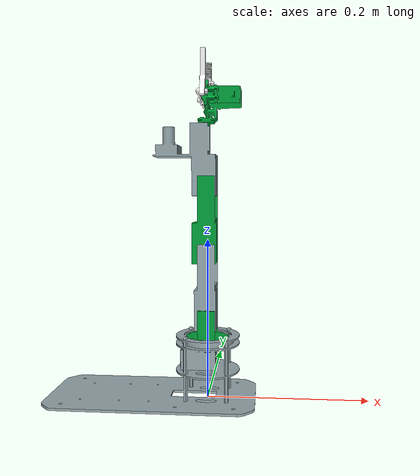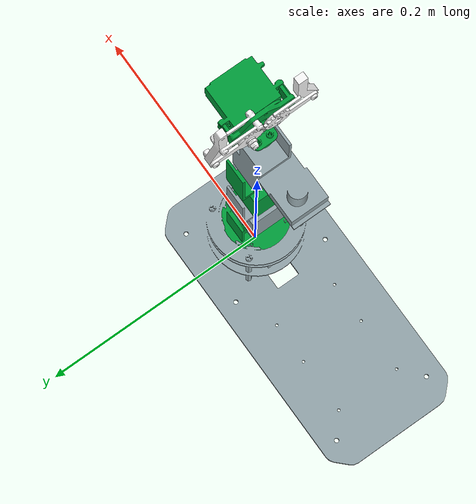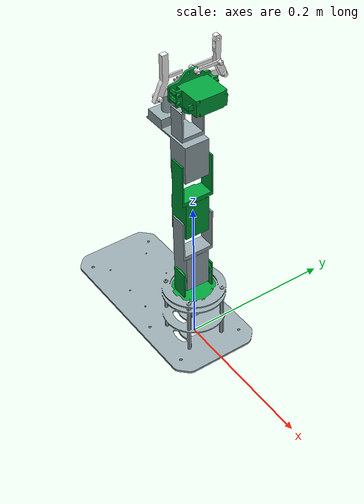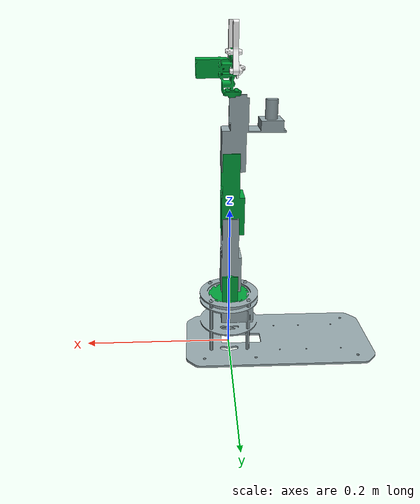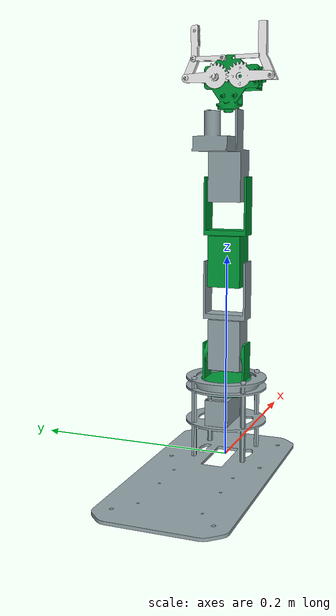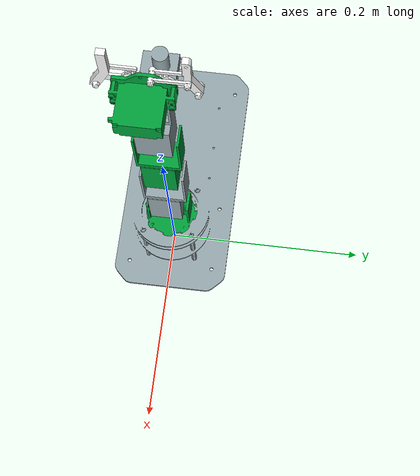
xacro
<?xml version="1.0"?>
<robot xmlns:xacro="http://www.ros.org/wiki/xacro" name="dofbot">
    <xacro:arg name="initial_positions_file" default="initial_positions.yaml" />

    <!-- Import dofbot urdf file -->
    <xacro:include filename="$(find robotx_description)/urdf/robotx_position_compiled.urdf" />

    <!-- Import control_xacro -->
    <xacro:include filename="dofbot.ros2_control.xacro" />

    <xacro:dofbot_ros2_control name="FakeSystem" initial_positions_file="$(arg initial_positions_file)"/>

</robot>

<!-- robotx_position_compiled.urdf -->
<!-- |    This document was autogenerated by xacro from /home/robousr/Dev/mujoco_ws/install/robotx_description/share/robotx_description/urdf/robotx_position.urdf | -->
<!-- |    EDITING THIS FILE BY HAND IS NOT RECOMMENDED                                 | -->
<robot name="dofbot">
  <!-- ================= MATERIALS ================= -->
  <material name="black">
    <color rgba="0 0 0 1"/>
  </material>
  <material name="green">
    <color rgba="0 1 0 1"/>
  </material>
  <material name="white">
    <color rgba="1 1 1 1"/>
  </material>
  <material name="gray">
    <color rgba="0.59 0.66 0.68 1"/>
  </material>
  <material name="light_green">
    <color rgba="0 0.63 0.23 1"/>
  </material>
  <!-- ================= INERTIAS ================= -->
  <link name="base_link">
    <visual>
      <origin rpy="0 0 0" xyz="0 0 0"/>
      <geometry>
        <mesh filename="package://robotx_description/meshes/base_link.STL"/>
      </geometry>
      <material name="gray">
        </material>
    </visual>
    <collision>
      <origin rpy="0 0 0" xyz="0 0 0"/>
      <geometry>
        <mesh filename="package://robotx_description/meshes/base_link_collider.STL"/>
      </geometry>
    </collision>
    <inertial>
      <origin rpy="0 0 0" xyz="-0.048241 -0.000057 0.021293"/>
      <mass value="0.369954"/>
      <inertia ixx="0.000627914" ixy="5.42014e-07" ixz="-0.000320848" iyy="0.00206292" iyz="5.68107e-07" izz="0.00210302"/>
    </inertial>
  </link>
  <link name="link1">
    <visual>
      <origin rpy="0 0 0" xyz="0 0 0"/>
      <geometry>
        <mesh filename="package://robotx_description/meshes/link1.STL"/>
      </geometry>
      <material name="light_green">
        </material>
    </visual>
    <collision>
      <origin rpy="0 0 0" xyz="0 0 0"/>
      <geometry>
        <mesh filename="package://robotx_description/meshes/link1_collider.STL"/>
      </geometry>
    </collision>
    <inertial>
      <origin rpy="0 0 0" xyz="0.000000 -0.000058 0.017982"/>
      <mass value="0.052133"/>
      <inertia ixx="2.0489e-05" ixy="-4.09574e-11" ixz="-1.96858e-10" iyy="1.68449e-05" iyz="7.50244e-08" izz="1.87563e-05"/>
    </inertial>
  </link>
  <link name="link2">
    <visual>
      <origin rpy="0 0 0" xyz="0 0 0"/>
      <geometry>
        <mesh filename="package://robotx_description/meshes/link2.STL"/>
      </geometry>
      <material name="gray">
        </material>
    </visual>
    <collision>
      <origin rpy="0 0 0" xyz="0 0 0"/>
      <geometry>
        <mesh filename="package://robotx_description/meshes/link2_collider.STL"/>
      </geometry>
    </collision>
    <inertial>
      <origin rpy="0 0 0" xyz="0.024890 -0.002259 0.000081"/>
      <mass value="0.0852143"/>
      <inertia ixx="1.57532e-05" ixy="-2.3667e-06" ixz="4.10319e-07" iyy="7.18242e-05" iyz="2.04186e-08" izz="6.65029e-05"/>
    </inertial>
  </link>
  <link name="link3">
    <visual>
      <origin rpy="0 0 0" xyz="0 0 0"/>
      <geometry>
        <mesh filename="package://robotx_description/meshes/link3.STL"/>
      </geometry>
      <material name="light_green">
        </material>
    </visual>
    <collision>
      <origin rpy="0 0 0" xyz="0 0 0"/>
      <geometry>
        <mesh filename="package://robotx_description/meshes/link3_collider.STL"/>
      </geometry>
    </collision>
    <inertial>
      <origin rpy="0 0 0" xyz="0.024890 -0.002259 0.000651"/>
      <mass value="0.0852113"/>
      <inertia ixx="1.57528e-05" ixy="-2.3675e-06" ixz="3.82539e-07" iyy="7.18221e-05" iyz="2.48634e-08" izz="6.65014e-05"/>
    </inertial>
  </link>
  <link name="link4">
    <visual>
      <origin rpy="0 0 0" xyz="0 0 0"/>
      <geometry>
        <mesh filename="package://robotx_description/meshes/link4.STL"/>
      </geometry>
      <material name="gray">
        </material>
    </visual>
    <collision>
      <origin rpy="0 0 0" xyz="0 0 0"/>
      <geometry>
        <mesh filename="package://robotx_description/meshes/link4_collider.STL"/>
      </geometry>
    </collision>
    <inertial>
      <origin rpy="0 0 0" xyz="0.038494 -0.004349 0.000785"/>
      <mass value="0.160513"/>
      <inertia ixx="7.57127e-05" ixy="-5.61912e-06" ixz="-4.6911e-08" iyy="0.000107106" iyz="-6.26283e-07" izz="0.000162611"/>
    </inertial>
  </link>
  <link name="link5">
    <visual>
      <origin rpy="0 0 0" xyz="0 0 0"/>
      <geometry>
        <mesh filename="package://robotx_description/meshes/link5.STL"/>
      </geometry>
      <material name="light_green">
        </material>
    </visual>
    <collision>
      <origin rpy="0 0 0" xyz="0 0 0"/>
      <geometry>
        <mesh filename="package://robotx_description/meshes/link5_collider.STL"/>
      </geometry>
    </collision>
    <inertial>
      <origin rpy="0 0 0" xyz="0.002194 0.017899 0.029433"/>
      <mass value="0.11192"/>
      <inertia ixx="3.11801e-05" ixy="-5.57049e-07" ixz="-6.73702e-07" iyy="2.79208e-05" iyz="-4.97005e-06" izz="3.62525e-05"/>
    </inertial>
  </link>
  <link name="link5a1">
    <visual>
      <origin rpy="0 0 0" xyz="0 0 0"/>
      <geometry>
        <mesh filename="package://robotx_description/meshes/link5a1.STL"/>
      </geometry>
      <material name="white">
        </material>
    </visual>
    <collision>
      <origin rpy="0 0 0" xyz="0 0 0"/>
      <geometry>
        <mesh filename="package://robotx_description/meshes/link5a1_collider.STL"/>
      </geometry>
    </collision>
    <inertial>
      <origin rpy="0 0 0" xyz="0.006493 0.000318 0.004269"/>
      <mass value="0.00542231"/>
      <inertia ixx="1.55742e-07" ixy="1.46659e-08" ixz="3.18943e-08" iyy="8.58889e-07" iyz="-2.09857e-09" izz="9.59872e-07"/>
    </inertial>
  </link>
  <link name="link5b1">
    <visual>
      <origin rpy="0 0 0" xyz="0 0 0"/>
      <geometry>
        <mesh filename="package://robotx_description/meshes/link5b1.STL"/>
      </geometry>
      <material name="white">
        </material>
    </visual>
    <collision>
      <origin rpy="0 0 0" xyz="0 0 0"/>
      <geometry>
        <mesh filename="package://robotx_description/meshes/link5b1_collider.STL"/>
      </geometry>
    </collision>
    <inertial>
      <origin rpy="0 0 0" xyz="-0.007172 0.000257 0.000650"/>
      <mass value="0.00487536"/>
      <inertia ixx="1.30783e-07" ixy="-1.93309e-08" ixz="-6.3004e-08" iyy="8.1377e-07" iyz="-9.54694e-10" izz="8.58767e-07"/>
    </inertial>
  </link>
  <link name="link5a2">
    <visual>
      <origin rpy="0 0 0" xyz="0 0 0"/>
      <geometry>
        <mesh filename="package://robotx_description/meshes/link5a2.STL"/>
      </geometry>
      <material name="white">
        </material>
    </visual>
    <collision>
      <origin rpy="0 0 0" xyz="0 0 0"/>
      <geometry>
        <mesh filename="package://robotx_description/meshes/link5a2_collider.STL"/>
      </geometry>
    </collision>
    <inertial>
      <origin rpy="0 0 0" xyz="-0.006191 0.022587 -0.003138"/>
      <mass value="0.00624262"/>
      <inertia ixx="1.52974e-06" ixy="2.46533e-07" ixz="4.03941e-10" iyy="9.90392e-08" iyz="-1.95022e-08" izz="1.59847e-06"/>
    </inertial>
  </link>
  <link name="link5b2">
    <visual>
      <origin rpy="0 0 0" xyz="0 0 0"/>
      <geometry>
        <mesh filename="package://robotx_description/meshes/link5b2.STL"/>
      </geometry>
      <material name="white">
        </material>
    </visual>
    <collision>
      <origin rpy="0 0 0" xyz="0 0 0"/>
      <geometry>
        <mesh filename="package://robotx_description/meshes/link5b2_collider.STL"/>
      </geometry>
    </collision>
    <inertial>
      <origin rpy="0 0 0" xyz="0.006021 0.022633 -0.003000"/>
      <mass value="0.00624262"/>
      <inertia ixx="1.53693e-06" ixy="-2.35784e-07" ixz="7.87104e-14" iyy="9.89977e-08" iyz="5.22151e-13" izz="1.59847e-06"/>
    </inertial>
  </link>
  <link name="link5a3">
    <visual>
      <origin rpy="0 0 0" xyz="0 0 0"/>
      <geometry>
        <mesh filename="package://robotx_description/meshes/link5a3.STL"/>
      </geometry>
      <material name="white">
        </material>
    </visual>
    <collision>
      <origin rpy="0 0 0" xyz="0 0 0"/>
      <geometry>
        <mesh filename="package://robotx_description/meshes/link5a3_collider.STL"/>
      </geometry>
    </collision>
    <inertial>
      <origin rpy="0 0 0" xyz="0.014410 0.000216 -0.000686"/>
      <mass value="0.00258849"/>
      <inertia ixx="5.83703e-08" ixy="-5.9177e-09" ixz="3.32641e-09" iyy="4.53009e-07" iyz="5.00492e-11" izz="4.0352e-07"/>
    </inertial>
  </link>
  <link name="link5b3">
    <visual>
      <origin rpy="0 0 0" xyz="0 0 0"/>
      <geometry>
        <mesh filename="package://robotx_description/meshes/link5b3.STL"/>
      </geometry>
      <material name="white">
        </material>
    </visual>
    <collision>
      <origin rpy="0 0 0" xyz="0 0 0"/>
      <geometry>
        <mesh filename="package://robotx_description/meshes/link5b3_collider.STL"/>
      </geometry>
    </collision>
    <inertial>
      <origin rpy="0 0 0" xyz="-0.014411 0.000175 -0.000686"/>
      <mass value="0.00258849"/>
      <inertia ixx="5.83396e-08" ixy="4.78574e-09" ixz="-3.32675e-09" iyy="4.5304e-07" iyz="4.01951e-11" izz="4.0352e-07"/>
    </inertial>
  </link>
  <link name="linkcam">
    </link>
  <joint name="joint1" type="revolute">
    <origin rpy="0 0 0" xyz="0 0 0.0607"/>
    <parent link="base_link"/>
    <child link="link1"/>
    <axis xyz="0 0 1"/>
    <limit effort="100" lower="-1.5707963267948966" upper="1.5707963267948966" velocity="100.0"/>
  </joint>
  <joint name="joint2" type="revolute">
    <origin rpy="-1.5707963267948966 -1.5707963267948966 0" xyz="0 -0.00031873 0.04145"/>
    <parent link="link1"/>
    <child link="link2"/>
    <axis xyz="0 0 1"/>
    <limit effort="100" lower="-1.5707963267948966" upper="1.5707963267948966" velocity="100.0"/>
  </joint>
  <joint name="joint3" type="revolute">
    <origin rpy="0 0 0" xyz="0.08285 0 0"/>
    <parent link="link2"/>
    <child link="link3"/>
    <axis xyz="0 0 1"/>
    <limit effort="100" lower="-1.5707963267948966" upper="1.5707963267948966" velocity="100.0"/>
  </joint>
  <joint name="joint4" type="revolute">
    <origin rpy="0 0 0" xyz="0.08285 0 0"/>
    <parent link="link3"/>
    <child link="link4"/>
    <axis xyz="0 0 1"/>
    <limit effort="100" lower="-1.5707963267948966" upper="1.5707963267948966" velocity="100.0"/>
  </joint>
  <joint name="joint5" type="revolute">
    <origin rpy="0 1.5707963267948966 0" xyz="0.07385 -0.001 0"/>
    <parent link="link4"/>
    <child link="link5"/>
    <axis xyz="0 0 1"/>
    <limit effort="100" lower="-1.5707963267948966" upper="1.5707963267948966" velocity="100.0"/>
  </joint>
  <joint name="joint5a1" type="revolute">
    <origin rpy="1.5707963267948966 0 0" xyz="0.0124 0.001 0.0322"/>
    <parent link="link5"/>
    <child link="link5a1"/>
    <axis xyz="0 0 1"/>
    <limit effort="100" lower="-1.5707963267948966" upper="1.5707963267948966" velocity="100.0"/>
  </joint>
  <joint name="joint5a2" type="revolute">
    <origin rpy="0 0 0" xyz="0.03 0 0.0045"/>
    <parent link="link5a1"/>
    <child link="link5a2"/>
    <axis xyz="0 0 1"/>
    <limit effort="100" lower="-1.5707963267948966" upper="1.5707963267948966" velocity="100.0"/>
  </joint>
  <joint name="joint5a3" type="revolute">
    <origin rpy="1.5707963267948966 0 0" xyz="0.0045 -0.0005 0.0502"/>
    <parent link="link5"/>
    <child link="link5a3"/>
    <axis xyz="0 0 1"/>
    <limit effort="100" lower="-1.5707963267948966" upper="1.5707963267948966" velocity="100.0"/>
  </joint>
  <joint name="joint5b1" type="revolute">
    <origin rpy="1.5707963267948966 0 0" xyz="-0.01215 -0.0035 0.0322"/>
    <parent link="link5"/>
    <child link="link5b1"/>
    <axis xyz="0 0 1"/>
    <limit effort="100" lower="-1.5707963267948966" upper="1.5707963267948966" velocity="100.0"/>
  </joint>
  <joint name="joint5b2" type="revolute">
    <origin rpy="0 0 0" xyz="-0.03 -0.0002 0"/>
    <parent link="link5b1"/>
    <child link="link5b2"/>
    <axis xyz="0 0 1"/>
    <limit effort="100" lower="-1.5707963267948966" upper="1.5707963267948966" velocity="100.0"/>
  </joint>
  <joint name="joint5b3" type="revolute">
    <origin rpy="1.5707963267948966 0 0" xyz="-0.0045 -0.0005 0.0502"/>
    <parent link="link5"/>
    <child link="link5b3"/>
    <axis xyz="0 0 1"/>
    <limit effort="100" lower="-1.5707963267948966" upper="1.5707963267948966" velocity="100.0"/>
  </joint>
  <joint name="jointcamera" type="fixed">
    <origin rpy="0 0 0" xyz="0.0697 0.0481 0.0006"/>
    <parent link="link4"/>
    <child link="linkcam"/>
    <axis xyz="0 0 1"/>
  </joint>
  <ros2_control name="RobotSystem" type="system">
    <hardware>
      <plugin>mujoco_ros2_control/MujocoSystemInterface</plugin>
      <param name="mujoco_model">
        /home/robousr/Dev/mujoco_ws/install/robotx_description/share/robotx_description/mujoco/robotx_mujoco.xml
    </param>
    </hardware>
    <joint name="joint1">
      <command_interface name="position"/>
      <state_interface name="position"/>
      <state_interface name="velocity"/>
    </joint>
    <joint name="joint2">
      <command_interface name="position"/>
      <state_interface name="position"/>
      <state_interface name="velocity"/>
    </joint>
    <joint name="joint3">
      <command_interface name="position"/>
      <state_interface name="position"/>
      <state_interface name="velocity"/>
    </joint>
    <joint name="joint4">
      <command_interface name="position"/>
      <state_interface name="position"/>
      <state_interface name="velocity"/>
    </joint>
    <joint name="joint5">
      <command_interface name="position"/>
      <state_interface name="position"/>
      <state_interface name="velocity"/>
    </joint>
    <joint name="joint5a1">
      <command_interface name="position"/>
      <state_interface name="position"/>
      <state_interface name="velocity"/>
    </joint>
    <joint name="joint5a2">
      <state_interface name="position"/>
      <state_interface name="velocity"/>
    </joint>
    <joint name="joint5a3">
      <state_interface name="position"/>
      <state_interface name="velocity"/>
    </joint>
    <joint name="joint5b1">
      <state_interface name="position"/>
      <state_interface name="velocity"/>
    </joint>
    <joint name="joint5b2">
      <state_interface name="position"/>
      <state_interface name="velocity"/>
    </joint>
    <joint name="joint5b3">
      <state_interface name="position"/>
      <state_interface name="velocity"/>
    </joint>
  </ros2_control>
</robot>
